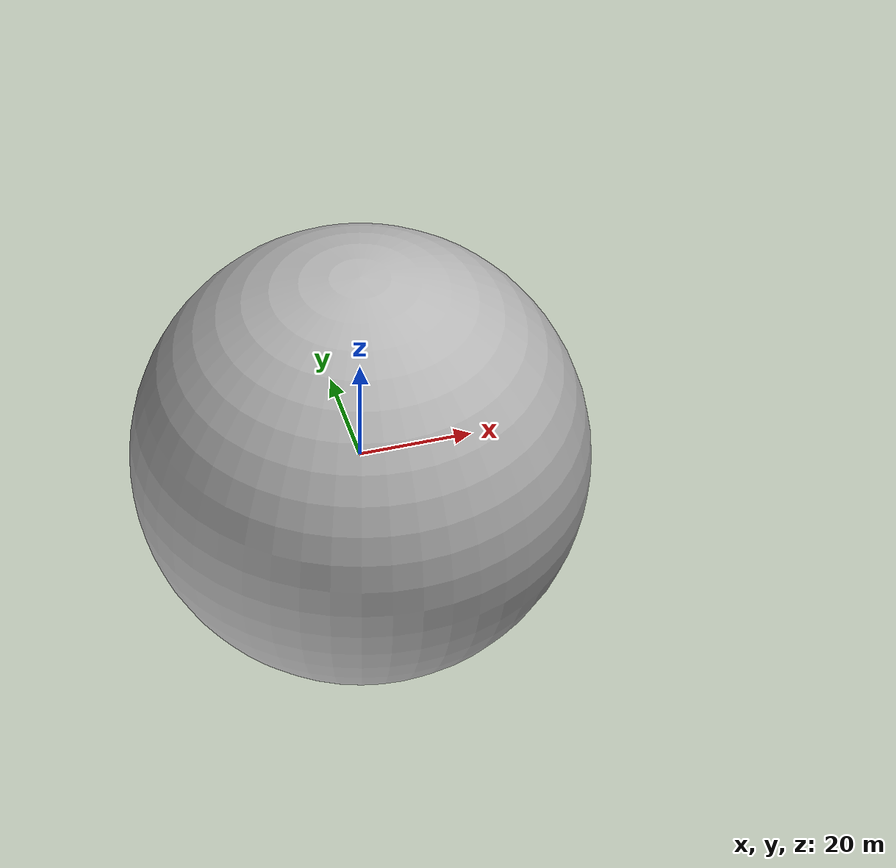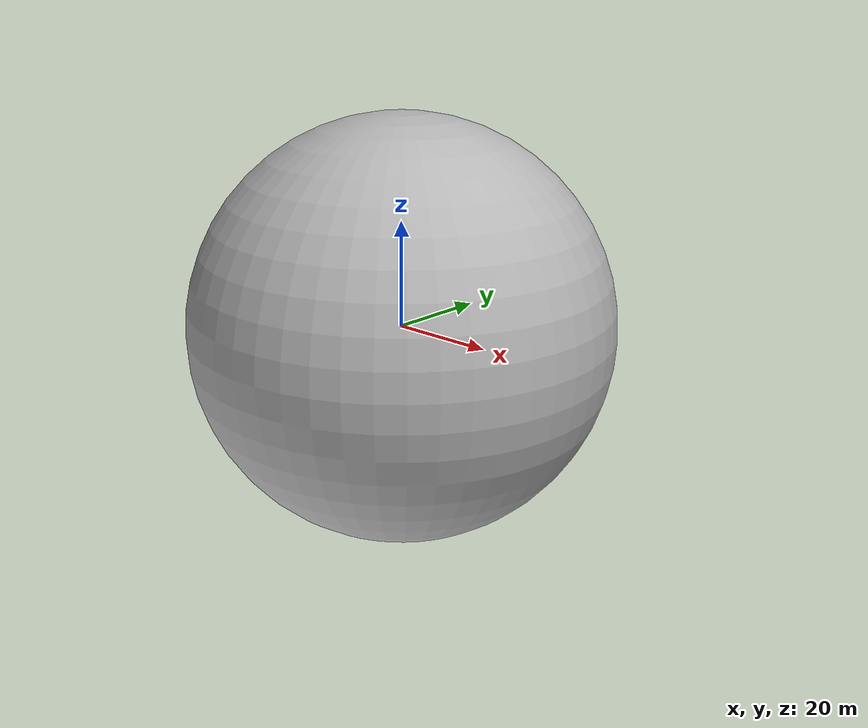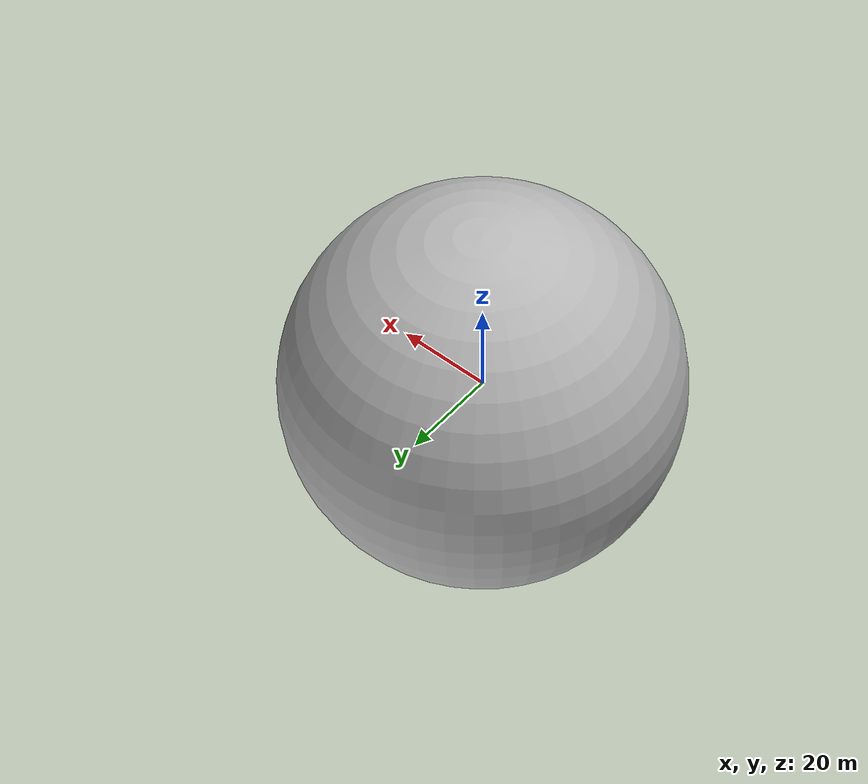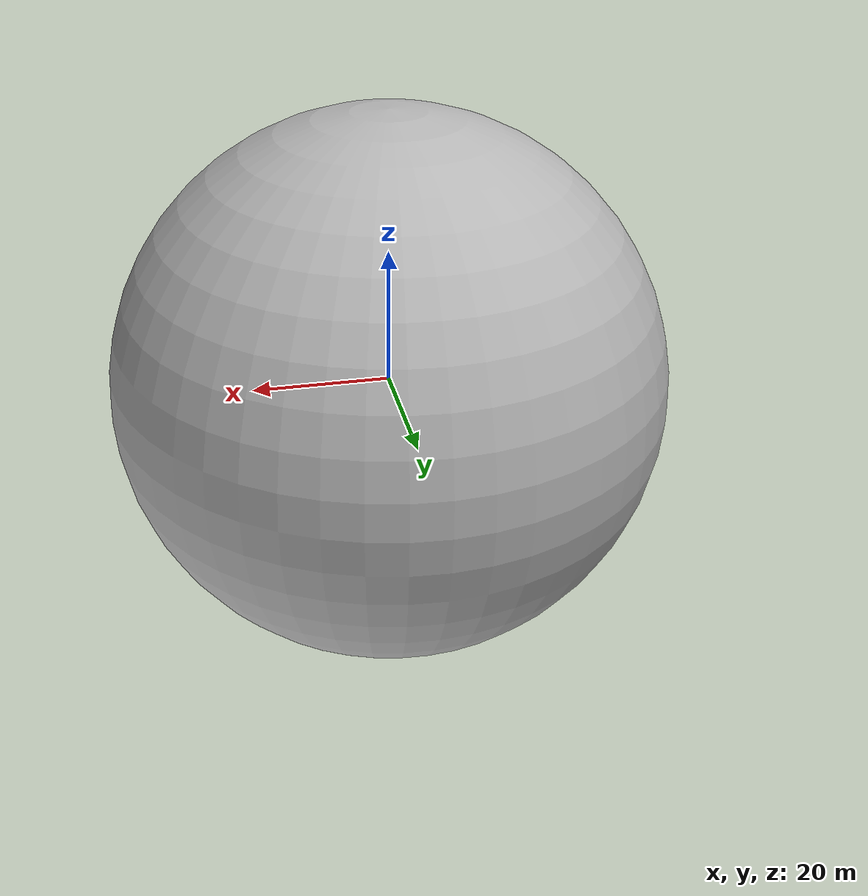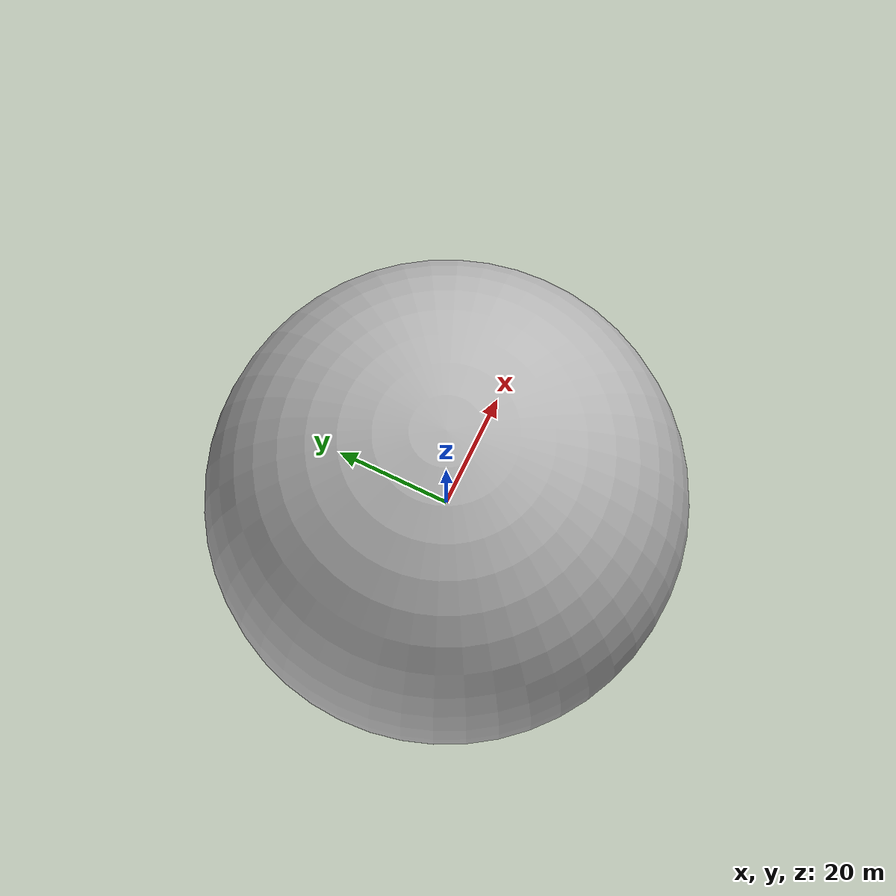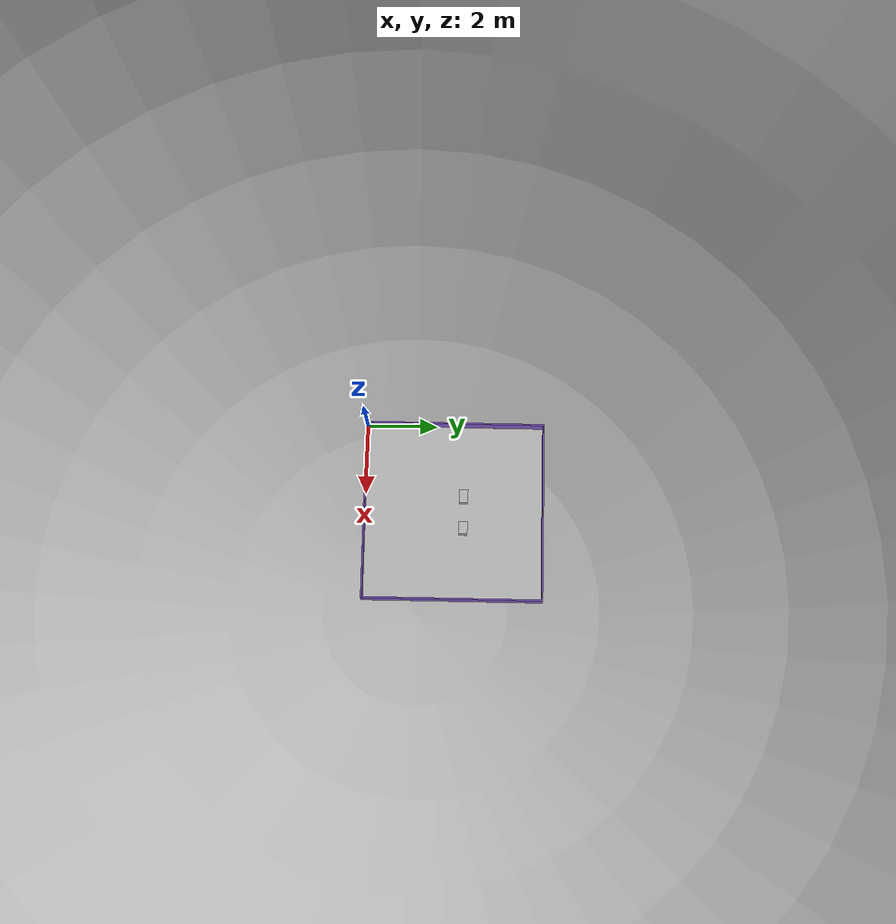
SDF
<?xml version='1.0' encoding='utf-8'?>
<sdf version="1.4">
<world name="physicar_base">
  <scene>
    <ambient>0.5 0.5 0.5 1.0</ambient>
    <background>0.66 0.81 0.96 1.0</background>
    <shadows>0</shadows>
    <sky />
  </scene>
  <include>
    <uri>model://sun</uri>
    <pose>0.0 0.0 15.0 0 0 0</pose>
    <cast_shadows>false</cast_shadows>
    <attenuation>
      <constant>0.5</constant>
      <linear>0.01</linear>
      <quadratic>0.0</quadratic>
      <range>100</range>
    </attenuation>
  </include>
  <light name="Light 1" type="point">
         <pose>0 0 15 0 0 0</pose>
         <diffuse>0.225 0.225 0.225 1</diffuse>
         <specular>.1 .1 .1 1</specular>
         <attenuation>
                <constant>0.4</constant>
                <linear>0.01</linear>
                <quadratic>0.00</quadratic>
                <range>50</range>
         </attenuation>
         <direction>0 0 -1</direction>
         <cast_shadows>false</cast_shadows>
  </light>
  <include>
    <uri>model://models/physicar_base</uri>
    <pose>0 0 0 0 0 0</pose>
    <name>racetrack</name>
  </include>
  <model name="box2">
    <pose>2.9660 2.7780 0.1210 0 0 0.0000</pose>
    <link name="object">
      <inertial>
        <mass>0.5</mass>
        <inertia>
          <ixx>0.004880</ixx><ixy>0</ixy><ixz>0</ixz>
          <iyy>0.007900</iyy><iyz>0</iyz>
          <izz>0.007900</izz>
        </inertia>
      </inertial>
      <collision name="collision">
        <geometry><box><size>0.36199999999999993 0.242 0.242</size></box></geometry>
      </collision>
      <visual name="visual">
        <geometry>
          <mesh><uri>model://meshes/physicar_box_obstacle/physicar_box_obstacle.dae</uri></mesh>
        </geometry>
      </visual>
    </link>
    <static>false</static>
  </model>
  <model name="box1">
    <pose>2.0577 2.7779 0.1210 0 0 0.0000</pose>
    <link name="object">
      <inertial>
        <mass>0.5</mass>
        <inertia>
          <ixx>0.004880</ixx><ixy>0</ixy><ixz>0</ixz>
          <iyy>0.007900</iyy><iyz>0</iyz>
          <izz>0.007900</izz>
        </inertia>
      </inertial>
      <collision name="collision">
        <geometry><box><size>0.36199999999999993 0.242 0.242</size></box></geometry>
      </collision>
      <visual name="visual">
        <geometry>
          <mesh><uri>model://meshes/physicar_box_obstacle/physicar_box_obstacle.dae</uri></mesh>
        </geometry>
      </visual>
    </link>
    <static>false</static>
  </model>
  <!-- perimeter fence collision markers: crash detection via TrackData (visual/physics collision is in the racetrack wall mesh) -->
  <model name="wall_0">
    <pose>2.5 -0.02 0.2 0 0 0</pose>
    <link name="wall">
      <collision name="collision"><geometry><box><size>5.08 0.04 0.4</size></box></geometry></collision>
    </link>
    <static>true</static>
  </model>
  <model name="wall_1">
    <pose>2.5 5.02 0.2 0 0 0</pose>
    <link name="wall">
      <collision name="collision"><geometry><box><size>5.08 0.04 0.4</size></box></geometry></collision>
    </link>
    <static>true</static>
  </model>
  <model name="wall_2">
    <pose>-0.02 2.5 0.2 0 0 0</pose>
    <link name="wall">
      <collision name="collision"><geometry><box><size>0.04 5.0 0.4</size></box></geometry></collision>
    </link>
    <static>true</static>
  </model>
  <model name="wall_3">
    <pose>5.02 2.5 0.2 0 0 0</pose>
    <link name="wall">
      <collision name="collision"><geometry><box><size>0.04 5.0 0.4</size></box></geometry></collision>
    </link>
    <static>true</static>
  </model>
  <physics name="default_physics" type="ode">
    <max_step_size>0.005</max_step_size>
    <real_time_update_rate>200</real_time_update_rate>
  </physics>
  <include>
    <uri>model://models/physicar_sky</uri>
    <pose>0 0 0 0 0 0</pose>
    <name>physicar_sky</name>
  </include>
</world>
</sdf>

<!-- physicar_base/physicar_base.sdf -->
<sdf version="1.4">
<model name="template_model">
<link name="track">
<collision name="collision">
<pose>0 0 0 0 0 0</pose>
<geometry>
<mesh>
<uri>model://meshes/physicar_base/physicar_base_collision.dae</uri>
</mesh>
</geometry>
</collision>
<visual name="visual">
<pose>0 0 0 0 0 0</pose>
<geometry>
<mesh>
<uri>model://meshes/physicar_base/physicar_base.dae</uri>
</mesh>
</geometry>
</visual>
<visual name="wall">
<pose>0 0 0 0 0 0</pose>
<geometry>
<mesh>
<uri>model://meshes/physicar_base/wall.dae</uri>
</mesh>
</geometry>
</visual>
<collision name="wall_collision">
<pose>0 0 0 0 0 0</pose>
<geometry>
<mesh>
<uri>model://meshes/physicar_base/wall.dae</uri>
</mesh>
</geometry>
</collision>
</link>
<static>1</static>
</model>
</sdf>

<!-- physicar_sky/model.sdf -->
<sdf version="1.6">
  <model name="physicar_sky">
    <static>true</static>
    <link name="link">
      <visual name="dome">
        <cast_shadows>false</cast_shadows>
        <geometry>
          <mesh><uri>model://meshes/physicar_sky/sky_dome.dae</uri></mesh>
        </geometry>
      </visual>
    </link>
  </model>
</sdf>
